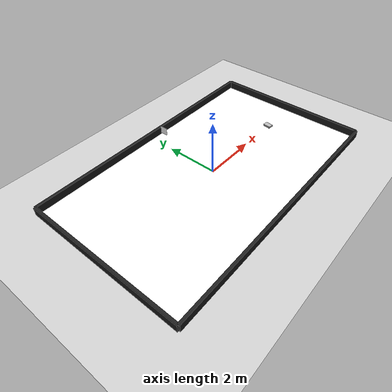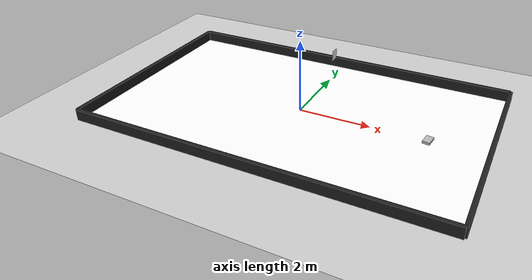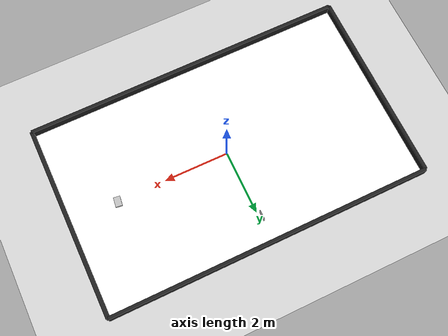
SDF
<?xml version="1.0"?>
<sdf version="1.7">
  <world name="2024autorace_full">

    <!-- Light -->
    <light name="sun" type="directional">
      <cast_shadows>1</cast_shadows>
      <pose>0 0 10 0 0 0</pose>
      <diffuse>0.8 0.8 0.8 1</diffuse>
      <specular>0.2 0.2 0.2 1</specular>
      <attenuation>
        <range>1000</range>
        <constant>0.9</constant>
        <linear>0.01</linear>
        <quadratic>0.001</quadratic>
      </attenuation>
      <direction>-0.5 0.1 -0.9</direction>
    </light>

    <!-- Ground plane (정상 정의) -->
    <model name="ground_plane">
      <static>1</static>
      <link name="link">
        <collision name="collision">
          <geometry>
            <plane>
              <normal>0 0 1</normal>
              <size>100 100</size>
            </plane>
          </geometry>
          <surface>
            <friction><ode><mu>100</mu><mu2>50</mu2></ode></friction>
          </surface>
        </collision>
        <visual name="visual">
          <cast_shadows>0</cast_shadows>
          <geometry>
            <plane>
              <normal>0 0 1</normal>
              <size>100 100</size>
            </plane>
          </geometry>
          <material>
            <script>
              <uri>file://media/materials/scripts/gazebo.material</uri>
              <name>Gazebo/Grey</name>
            </script>
          </material>
        </visual>
      </link>
    </model>

    <!-- 물리/씬 -->
    <gravity>0 0 -9.8</gravity>
    <physics type="ode">
      <max_step_size>0.001</max_step_size>
      <real_time_factor>1</real_time_factor>
      <real_time_update_rate>1000</real_time_update_rate>
    </physics>
    <scene>
      <ambient>0.4 0.4 0.4 1</ambient>
      <background>0.7 0.7 0.7 1</background>
      <shadows>1</shadows>
    </scene>

    <!-- 이동 박스 -->
    <model name="moving_box">
      <pose>3.5 0 0.0 0 0 -1.7</pose>
      <link name="link">
        <collision name="collision">
          <geometry><box><size>0.3 0.2 0.15</size></box></geometry>
        </collision>
        <visual name="visual">
          <geometry><box><size>0.3 0.2 0.15</size></box></geometry>
        </visual>
      </link>
      <plugin name="planar_move" filename="libgazebo_ros_planar_move.so">
        <ros>
          <namespace>demo</namespace>
          <remapping>cmd_vel:=box_cmd_demo</remapping>
          <remapping>odom:=box_odom_demo</remapping>
        </ros>
      </plugin>
    </model>

    <!-- 트랙 바닥 텍스처 모델 -->
    <include>
      <uri>model://2024autorace</uri>
      <pose>0 0 0 0 0 0</pose>
    </include>

    <!-- 트랙을 둘러싸는 벽들 -->
    <include>
      <uri>model://wall_10m</uri>
      <name>wall_10m_left</name>
      <pose>0 3 0.15 0 0 0 </pose>
    </include>

    <include>
      <uri>model://wall_10m</uri>
      <name>wall_10m_right</name>
      <pose>0 -3 0.15 0 0 0 </pose>
    </include>

    <include>
      <uri>model://wall_6m</uri>
      <name>wall_6m_right</name>
      <pose>5 0 0.15 0 0 1.5707</pose>
    </include>

    <include>
      <uri>model://wall_6m</uri>
      <name>wall_6m_left</name>
      <pose>-5 0 0.15 0 0 1.5707</pose>
    </include>

    <!-- 마커들 -->
    <include>
      <uri>model://left_marker</uri>
      <pose>0 2.3 0.7 1.5707 0 0</pose>
    </include>

    <!-- GUI 카메라 -->
    <gui fullscreen="0">
      <camera name="user_camera">
        <pose>-13 -12 5 0 0.1 0.57</pose>
        <view_controller>orbit</view_controller>
      </camera>
    </gui>

  </world>
</sdf>

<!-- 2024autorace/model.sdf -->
<sdf version="1.7">
  <model name="2024autorace">
    <static>true</static>
    <pose>0 0 0 0 0 0</pose>

    <link name="base">

      <!-- 텍스처가 입혀진 10m x 6m 평면 (z=0.001로 z-fighting 방지) -->
      <visual name="base_visual_plane">
        <pose>0 0 0.001 0 0 0</pose>
        <geometry>
          <plane>
            <normal>0 0 1</normal>
            <size>10 6</size>
          </plane>
        </geometry>
        <material>
          <script>
            <!-- 스크립트/텍스처 경로 등록 -->
            <uri>model://2024autorace/materials/scripts</uri>
            <uri>model://2024autorace/materials/textures</uri>
            <!-- ★ 스크립트에 정의한 이름과 동일해야 함 -->
            <name>2024Autorace/Albedo</name>
          </script>
          <!-- 아래 색상들은 스크립트가 대체하므로 굳이 필요 없음 (남겨도 무방) -->
          <ambient>1 1 1 1</ambient>
          <diffuse>1 1 1 1</diffuse>
          <specular>0 0 0 1</specular>
        </material>
      </visual>

    </link>
  </model>
</sdf>

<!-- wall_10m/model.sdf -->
<sdf version="1.7">
  <model name="wall_10m">
    <static>true</static>
    <!-- 바닥 위에 놓이도록 링크의 중심을 z = 0.15(= 0.3/2) -->
    <pose>0 0 0.15 0 0 0</pose>

    <link name="link">
      <inertial>
        <mass>1.0</mass>
        <inertia>
          <ixx>1.0</ixx><iyy>1.0</iyy><izz>1.0</izz>
          <ixy>0</ixy><ixz>0</ixz><iyz>0</iyz>
        </inertia>
      </inertial>

      <collision name="collision">
        <geometry>
          <box>
            <size>10.0 0.1 0.3</size>
          </box>
        </geometry>
        <surface>
          <contact/>
          <friction>
            <ode/>
          </friction>
        </surface>
      </collision>

      <visual name="visual">
        <geometry>
          <box>
            <size>10.0 0.1 0.3</size>
          </box>
        </geometry>
        <material>
          <script>
            <uri>file://media/materials/scripts/gazebo.material</uri>
            <name>Gazebo/Black</name>
          </script>
        </material>
      </visual>
    </link>
  </model>
</sdf>

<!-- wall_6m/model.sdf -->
<sdf version="1.7">
  <model name="wall_6m">
    <static>true</static>
    <!-- 바닥 위에 놓이도록 링크의 중심을 z = 0.15(= 0.3/2) -->
    <pose>0 0 0.15 0 0 0</pose>

    <link name="link">
      <inertial>
        <mass>1.0</mass>
        <inertia>
          <ixx>1.0</ixx><iyy>1.0</iyy><izz>1.0</izz>
          <ixy>0</ixy><ixz>0</ixz><iyz>0</iyz>
        </inertia>
      </inertial>

      <collision name="collision">
        <geometry>
          <box>
            <size>6.0 0.1 0.3</size>
          </box>
        </geometry>
        <surface>
          <contact/>
          <friction>
            <ode/>
          </friction>
        </surface>
      </collision>

      <visual name="visual">
        <geometry>
          <box>
            <size>6.0 0.1 0.3</size>
          </box>
        </geometry>
        <material>
          <script>
            <uri>file://media/materials/scripts/gazebo.material</uri>
            <name>Gazebo/Black</name>
          </script>
        </material>
      </visual>
    </link>
  </model>
</sdf>

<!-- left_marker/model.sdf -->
<sdf version="1.7">
  <model name="left marker">
    <static>true</static>
    <pose>0 0 0 0 0 0</pose>

    <link name="base">

      <!-- 텍스처가 입혀진 10m x 6m 평면 (z=0.001로 z-fighting 방지) -->
      <visual name="base_visual_plane">
        <pose>0 0 0.001 0 1.5707 0</pose>
        <geometry>
          <plane>
            <normal>0 0 1</normal>
            <size>.3 .3</size>
          </plane>
        </geometry>
        <material>
          <script>
            <!-- 스크립트/텍스처 경로 등록 -->
            <uri>model://left_marker/materials/scripts</uri>
            <uri>model://left_marker/materials/textures</uri>
            <!-- ★ 스크립트에 정의한 이름과 동일해야 함 -->
            <name>Leftmarker/Albedo</name>
          </script>
          <!-- 아래 색상들은 스크립트가 대체하므로 굳이 필요 없음 (남겨도 무방) -->
          <ambient>1 1 1 1</ambient>
          <diffuse>1 1 1 1</diffuse>
          <specular>0 0 0 1</specular>
        </material>
      </visual>
    </link>
  </model>
</sdf>
